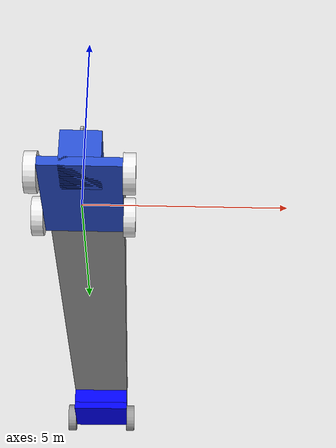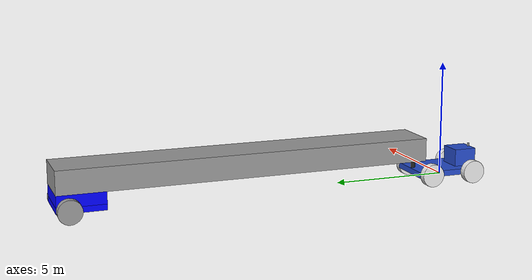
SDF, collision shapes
<?xml version='1.0'?>
<sdf version='1.7'>
  <model name='TractorTrailer_2'>
    <link name='link'>
      <inertial>
        <mass>6500</mass>
        <inertia>
          <ixx>4908.85</ixx>
          <ixy>0</ixy>
          <ixz>0</ixz>
          <iyy>2200.52</iyy>
          <iyz>0</iyz>
          <izz>7041.67</izz>
        </inertia>
        <pose>0 0 0 0 -0 0</pose>
      </inertial>
      <self_collide>0</self_collide>
      <enable_wind>0</enable_wind>
      <kinematic>0</kinematic>
      <pose>0 0 0.25 0 -0 0</pose>
      <gravity>1</gravity>
      <visual name='visual'>
        <geometry>
          <box>
            <size>2 3 0.25</size>
          </box>
        </geometry>
        <material>
          <script>
            <name>Gazebo/Blue</name>
            <uri>file://media/materials/scripts/gazebo.material</uri>
          </script>
          <shader type='pixel'>
            <normal_map>__default__</normal_map>
          </shader>
          <ambient>0 0 1 1</ambient>
          <diffuse>0 0 1 1</diffuse>
          <specular>0 0 1 1</specular>
          <emissive>0 0 0 1</emissive>
        </material>
        <pose>0 0 0 0 -0 0</pose>
        <transparency>0</transparency>
        <cast_shadows>1</cast_shadows>
      </visual>
      <collision name='collision'>
        <laser_retro>0</laser_retro>
        <max_contacts>10</max_contacts>
        <pose>0 0 0 0 -0 0</pose>
        <geometry>
          <box>
            <size>2 3 0.25</size>
          </box>
        </geometry>
        <surface>
          <friction>
            <ode>
              <mu>1</mu>
              <mu2>1</mu2>
              <fdir1>0 0 0</fdir1>
              <slip1>0</slip1>
              <slip2>0</slip2>
            </ode>
            <torsional>
              <coefficient>1</coefficient>
              <patch_radius>0</patch_radius>
              <surface_radius>0</surface_radius>
              <use_patch_radius>1</use_patch_radius>
              <ode>
                <slip>0</slip>
              </ode>
            </torsional>
          </friction>
          <bounce>
            <restitution_coefficient>0</restitution_coefficient>
            <threshold>1e+06</threshold>
          </bounce>
          <contact>
            <collide_without_contact>0</collide_without_contact>
            <collide_without_contact_bitmask>1</collide_without_contact_bitmask>
            <collide_bitmask>1</collide_bitmask>
            <ode>
              <soft_cfm>0</soft_cfm>
              <soft_erp>0.2</soft_erp>
              <kp>1e+13</kp>
              <kd>1</kd>
              <max_vel>0.01</max_vel>
              <min_depth>0</min_depth>
            </ode>
            <bullet>
              <split_impulse>1</split_impulse>
              <split_impulse_penetration_threshold>-0.01</split_impulse_penetration_threshold>
              <soft_cfm>0</soft_cfm>
              <soft_erp>0.2</soft_erp>
              <kp>1e+13</kp>
              <kd>1</kd>
            </bullet>
          </contact>
        </surface>
      </collision>
    </link>
    <link name='link_0'>
      <inertial>
        <mass>35</mass>
        <inertia>
          <ixx>2.45</ixx>
          <ixy>0</ixy>
          <ixz>0</ixz>
          <iyy>2.45</iyy>
          <iyz>0</iyz>
          <izz>4.375</izz>
        </inertia>
        <pose>0 0 0 0 -0 0</pose>
      </inertial>
      <pose>-1.15 -0.999952 0.2575 1.56905 1.5707 1.56905</pose>
      <gravity>1</gravity>
      <self_collide>0</self_collide>
      <kinematic>0</kinematic>
      <enable_wind>0</enable_wind>
      <visual name='visual'>
        <pose>0 0 0 0 -0 0</pose>
        <geometry>
          <cylinder>
            <radius>0.5</radius>
            <length>0.3</length>
          </cylinder>
        </geometry>
        <material>
          <lighting>1</lighting>
          <script>
            <uri>file://media/materials/scripts/gazebo.material</uri>
            <name>Gazebo/White</name>
          </script>
          <shader type='pixel'>
            <normal_map>__default__</normal_map>
          </shader>
          <ambient>1 1 1 1</ambient>
          <diffuse>0.7 0.7 0.7 1</diffuse>
          <specular>0.01 0.01 0.01 1</specular>
          <emissive>0 0 0 1</emissive>
        </material>
        <transparency>0</transparency>
        <cast_shadows>1</cast_shadows>
      </visual>
      <collision name='collision'>
        <laser_retro>0</laser_retro>
        <max_contacts>10</max_contacts>
        <pose>0 0 0 0 -0 0</pose>
        <geometry>
          <cylinder>
            <radius>0.5</radius>
            <length>0.3</length>
          </cylinder>
        </geometry>
        <surface>
          <friction>
            <ode>
              <mu>1</mu>
              <mu2>1</mu2>
              <fdir1>0 0 0</fdir1>
              <slip1>0</slip1>
              <slip2>0</slip2>
            </ode>
            <torsional>
              <coefficient>1</coefficient>
              <patch_radius>0</patch_radius>
              <surface_radius>0</surface_radius>
              <use_patch_radius>1</use_patch_radius>
              <ode>
                <slip>0</slip>
              </ode>
            </torsional>
          </friction>
          <bounce>
            <restitution_coefficient>0</restitution_coefficient>
            <threshold>1e+06</threshold>
          </bounce>
          <contact>
            <collide_without_contact>0</collide_without_contact>
            <collide_without_contact_bitmask>1</collide_without_contact_bitmask>
            <collide_bitmask>1</collide_bitmask>
            <ode>
              <soft_cfm>0</soft_cfm>
              <soft_erp>0.2</soft_erp>
              <kp>1e+13</kp>
              <kd>1</kd>
              <max_vel>0.01</max_vel>
              <min_depth>0</min_depth>
            </ode>
            <bullet>
              <split_impulse>1</split_impulse>
              <split_impulse_penetration_threshold>-0.01</split_impulse_penetration_threshold>
              <soft_cfm>0</soft_cfm>
              <soft_erp>0.2</soft_erp>
              <kp>1e+13</kp>
              <kd>1</kd>
            </bullet>
          </contact>
        </surface>
      </collision>
    </link>
    <link name='link_0_clone'>
      <inertial>
        <mass>35</mass>
        <inertia>
          <ixx>2.45</ixx>
          <ixy>0</ixy>
          <ixz>0</ixz>
          <iyy>2.45</iyy>
          <iyz>0</iyz>
          <izz>4.375</izz>
        </inertia>
        <pose>0 0 0 0 -0 0</pose>
      </inertial>
      <pose>1.15 -0.999952 0.2575 1.56905 1.5707 1.56905</pose>
      <gravity>1</gravity>
      <self_collide>0</self_collide>
      <kinematic>0</kinematic>
      <enable_wind>0</enable_wind>
      <visual name='visual'>
        <pose>0 0 0 0 -0 0</pose>
        <geometry>
          <cylinder>
            <radius>0.5</radius>
            <length>0.3</length>
          </cylinder>
        </geometry>
        <material>
          <lighting>1</lighting>
          <script>
            <uri>file://media/materials/scripts/gazebo.material</uri>
            <name>Gazebo/White</name>
          </script>
          <shader type='pixel'>
            <normal_map>__default__</normal_map>
          </shader>
          <ambient>1 1 1 1</ambient>
          <diffuse>0.7 0.7 0.7 1</diffuse>
          <specular>0.01 0.01 0.01 1</specular>
          <emissive>0 0 0 1</emissive>
        </material>
        <transparency>0</transparency>
        <cast_shadows>1</cast_shadows>
      </visual>
      <collision name='collision'>
        <laser_retro>0</laser_retro>
        <max_contacts>10</max_contacts>
        <pose>0 0 0 0 -0 0</pose>
        <geometry>
          <cylinder>
            <radius>0.5</radius>
            <length>0.3</length>
          </cylinder>
        </geometry>
        <surface>
          <friction>
            <ode>
              <mu>1</mu>
              <mu2>1</mu2>
              <fdir1>0 0 0</fdir1>
              <slip1>0</slip1>
              <slip2>0</slip2>
            </ode>
            <torsional>
              <coefficient>1</coefficient>
              <patch_radius>0</patch_radius>
              <surface_radius>0</surface_radius>
              <use_patch_radius>1</use_patch_radius>
              <ode>
                <slip>0</slip>
              </ode>
            </torsional>
          </friction>
          <bounce>
            <restitution_coefficient>0</restitution_coefficient>
            <threshold>1e+06</threshold>
          </bounce>
          <contact>
            <collide_without_contact>0</collide_without_contact>
            <collide_without_contact_bitmask>1</collide_without_contact_bitmask>
            <collide_bitmask>1</collide_bitmask>
            <ode>
              <soft_cfm>0</soft_cfm>
              <soft_erp>0.2</soft_erp>
              <kp>1e+13</kp>
              <kd>1</kd>
              <max_vel>0.01</max_vel>
              <min_depth>0</min_depth>
            </ode>
            <bullet>
              <split_impulse>1</split_impulse>
              <split_impulse_penetration_threshold>-0.01</split_impulse_penetration_threshold>
              <soft_cfm>0</soft_cfm>
              <soft_erp>0.2</soft_erp>
              <kp>1e+13</kp>
              <kd>1</kd>
            </bullet>
          </contact>
        </surface>
      </collision>
    </link>
    <link name='link_0_clone_0'>
      <inertial>
        <mass>35</mass>
        <inertia>
          <ixx>2.45</ixx>
          <ixy>0</ixy>
          <ixz>0</ixz>
          <iyy>2.45</iyy>
          <iyz>0</iyz>
          <izz>4.375</izz>
        </inertia>
        <pose>0 0 0 0 -0 0</pose>
      </inertial>
      <pose>1.15 0.999952 0.2575 1.56905 1.5707 1.56905</pose>
      <gravity>1</gravity>
      <self_collide>0</self_collide>
      <kinematic>0</kinematic>
      <enable_wind>0</enable_wind>
      <visual name='visual'>
        <pose>0 0 0 0 -0 0</pose>
        <geometry>
          <cylinder>
            <radius>0.5</radius>
            <length>0.3</length>
          </cylinder>
        </geometry>
        <material>
          <lighting>1</lighting>
          <script>
            <uri>file://media/materials/scripts/gazebo.material</uri>
            <name>Gazebo/White</name>
          </script>
          <shader type='pixel'>
            <normal_map>__default__</normal_map>
          </shader>
          <ambient>1 1 1 1</ambient>
          <diffuse>0.7 0.7 0.7 1</diffuse>
          <specular>0.01 0.01 0.01 1</specular>
          <emissive>0 0 0 1</emissive>
        </material>
        <transparency>0</transparency>
        <cast_shadows>1</cast_shadows>
      </visual>
      <collision name='collision'>
        <laser_retro>0</laser_retro>
        <max_contacts>10</max_contacts>
        <pose>0 0 0 0 -0 0</pose>
        <geometry>
          <cylinder>
            <radius>0.5</radius>
            <length>0.3</length>
          </cylinder>
        </geometry>
        <surface>
          <friction>
            <ode>
              <mu>1</mu>
              <mu2>1</mu2>
              <fdir1>0 0 0</fdir1>
              <slip1>0</slip1>
              <slip2>0</slip2>
            </ode>
            <torsional>
              <coefficient>1</coefficient>
              <patch_radius>0</patch_radius>
              <surface_radius>0</surface_radius>
              <use_patch_radius>1</use_patch_radius>
              <ode>
                <slip>0</slip>
              </ode>
            </torsional>
          </friction>
          <bounce>
            <restitution_coefficient>0</restitution_coefficient>
            <threshold>1e+06</threshold>
          </bounce>
          <contact>
            <collide_without_contact>0</collide_without_contact>
            <collide_without_contact_bitmask>1</collide_without_contact_bitmask>
            <collide_bitmask>1</collide_bitmask>
            <ode>
              <soft_cfm>0</soft_cfm>
              <soft_erp>0.2</soft_erp>
              <kp>1e+13</kp>
              <kd>1</kd>
              <max_vel>0.01</max_vel>
              <min_depth>0</min_depth>
            </ode>
            <bullet>
              <split_impulse>1</split_impulse>
              <split_impulse_penetration_threshold>-0.01</split_impulse_penetration_threshold>
              <soft_cfm>0</soft_cfm>
              <soft_erp>0.2</soft_erp>
              <kp>1e+13</kp>
              <kd>1</kd>
            </bullet>
          </contact>
        </surface>
      </collision>
    </link>
    <link name='link_0_clone_0_clone_0'>
      <inertial>
        <mass>35</mass>
        <inertia>
          <ixx>2.45</ixx>
          <ixy>0</ixy>
          <ixz>0</ixz>
          <iyy>2.45</iyy>
          <iyz>0</iyz>
          <izz>4.375</izz>
        </inertia>
        <pose>0 0 0 0 -0 0</pose>
      </inertial>
      <pose>1.15 16.76 0.265 1.56905 1.5707 1.56905</pose>
      <gravity>1</gravity>
      <self_collide>0</self_collide>
      <kinematic>0</kinematic>
      <enable_wind>0</enable_wind>
      <visual name='visual'>
        <pose>0 0 0 0 -0 0</pose>
        <geometry>
          <cylinder>
            <radius>0.5</radius>
            <length>0.3</length>
          </cylinder>
        </geometry>
        <material>
          <lighting>1</lighting>
          <script>
            <uri>file://media/materials/scripts/gazebo.material</uri>
            <name>Gazebo/Grey</name>
          </script>
          <shader type='pixel'>
            <normal_map>__default__</normal_map>
          </shader>
          <ambient>1 1 1 1</ambient>
          <diffuse>0.7 0.7 0.7 1</diffuse>
          <specular>0.01 0.01 0.01 1</specular>
          <emissive>0 0 0 1</emissive>
        </material>
        <transparency>0</transparency>
        <cast_shadows>1</cast_shadows>
      </visual>
      <collision name='collision'>
        <laser_retro>0</laser_retro>
        <max_contacts>10</max_contacts>
        <pose>0 0 0 0 -0 0</pose>
        <geometry>
          <cylinder>
            <radius>0.5</radius>
            <length>0.3</length>
          </cylinder>
        </geometry>
        <surface>
          <friction>
            <ode>
              <mu>1</mu>
              <mu2>1</mu2>
              <fdir1>0 0 0</fdir1>
              <slip1>0</slip1>
              <slip2>0</slip2>
            </ode>
            <torsional>
              <coefficient>1</coefficient>
              <patch_radius>0</patch_radius>
              <surface_radius>0</surface_radius>
              <use_patch_radius>1</use_patch_radius>
              <ode>
                <slip>0</slip>
              </ode>
            </torsional>
          </friction>
          <bounce>
            <restitution_coefficient>0</restitution_coefficient>
            <threshold>1e+06</threshold>
          </bounce>
          <contact>
            <collide_without_contact>0</collide_without_contact>
            <collide_without_contact_bitmask>1</collide_without_contact_bitmask>
            <collide_bitmask>1</collide_bitmask>
            <ode>
              <soft_cfm>0</soft_cfm>
              <soft_erp>0.2</soft_erp>
              <kp>1e+13</kp>
              <kd>1</kd>
              <max_vel>0.01</max_vel>
              <min_depth>0</min_depth>
            </ode>
            <bullet>
              <split_impulse>1</split_impulse>
              <split_impulse_penetration_threshold>-0.01</split_impulse_penetration_threshold>
              <soft_cfm>0</soft_cfm>
              <soft_erp>0.2</soft_erp>
              <kp>1e+13</kp>
              <kd>1</kd>
            </bullet>
          </contact>
        </surface>
      </collision>
    </link>
    <link name='link_0_clone_0_clone_1'>
      <inertial>
        <mass>35</mass>
        <inertia>
          <ixx>2.45</ixx>
          <ixy>0</ixy>
          <ixz>0</ixz>
          <iyy>2.45</iyy>
          <iyz>0</iyz>
          <izz>4.375</izz>
        </inertia>
        <pose>0 0 0 0 -0 0</pose>
      </inertial>
      <pose>-1.15 16.76 0.265 1.56905 1.5707 1.56905</pose>
      <gravity>1</gravity>
      <self_collide>0</self_collide>
      <kinematic>0</kinematic>
      <enable_wind>0</enable_wind>
      <visual name='visual'>
        <pose>0 0 0 0 -0 0</pose>
        <geometry>
          <cylinder>
            <radius>0.5</radius>
            <length>0.3</length>
          </cylinder>
        </geometry>
        <material>
          <lighting>1</lighting>
          <script>
            <uri>file://media/materials/scripts/gazebo.material</uri>
            <name>Gazebo/Grey</name>
          </script>
          <shader type='pixel'>
            <normal_map>__default__</normal_map>
          </shader>
          <ambient>1 1 1 1</ambient>
          <diffuse>0.7 0.7 0.7 1</diffuse>
          <specular>0.01 0.01 0.01 1</specular>
          <emissive>0 0 0 1</emissive>
        </material>
        <transparency>0</transparency>
        <cast_shadows>1</cast_shadows>
      </visual>
      <collision name='collision'>
        <laser_retro>0</laser_retro>
        <max_contacts>10</max_contacts>
        <pose>0 0 0 0 -0 0</pose>
        <geometry>
          <cylinder>
            <radius>0.5</radius>
            <length>0.3</length>
          </cylinder>
        </geometry>
        <surface>
          <friction>
            <ode>
              <mu>1</mu>
              <mu2>1</mu2>
              <fdir1>0 0 0</fdir1>
              <slip1>0</slip1>
              <slip2>0</slip2>
            </ode>
            <torsional>
              <coefficient>1</coefficient>
              <patch_radius>0</patch_radius>
              <surface_radius>0</surface_radius>
              <use_patch_radius>1</use_patch_radius>
              <ode>
                <slip>0</slip>
              </ode>
            </torsional>
          </friction>
          <bounce>
            <restitution_coefficient>0</restitution_coefficient>
            <threshold>1e+06</threshold>
          </bounce>
          <contact>
            <collide_without_contact>0</collide_without_contact>
            <collide_without_contact_bitmask>1</collide_without_contact_bitmask>
            <collide_bitmask>1</collide_bitmask>
            <ode>
              <soft_cfm>0</soft_cfm>
              <soft_erp>0.2</soft_erp>
              <kp>1e+13</kp>
              <kd>1</kd>
              <max_vel>0.01</max_vel>
              <min_depth>0</min_depth>
            </ode>
            <bullet>
              <split_impulse>1</split_impulse>
              <split_impulse_penetration_threshold>-0.01</split_impulse_penetration_threshold>
              <soft_cfm>0</soft_cfm>
              <soft_erp>0.2</soft_erp>
              <kp>1e+13</kp>
              <kd>1</kd>
            </bullet>
          </contact>
        </surface>
      </collision>
    </link>
    <link name='link_0_clone_1'>
      <inertial>
        <mass>35</mass>
        <inertia>
          <ixx>2.45</ixx>
          <ixy>0</ixy>
          <ixz>0</ixz>
          <iyy>2.45</iyy>
          <iyz>0</iyz>
          <izz>4.375</izz>
        </inertia>
        <pose>0 0 0 0 -0 0</pose>
      </inertial>
      <pose>-1.15 0.999952 0.2575 1.56905 1.5707 1.56905</pose>
      <gravity>1</gravity>
      <self_collide>0</self_collide>
      <kinematic>0</kinematic>
      <enable_wind>0</enable_wind>
      <visual name='visual'>
        <pose>0 0 0 0 -0 0</pose>
        <geometry>
          <cylinder>
            <radius>0.5</radius>
            <length>0.3</length>
          </cylinder>
        </geometry>
        <material>
          <lighting>1</lighting>
          <script>
            <uri>file://media/materials/scripts/gazebo.material</uri>
            <name>Gazebo/White</name>
          </script>
          <shader type='pixel'>
            <normal_map>__default__</normal_map>
          </shader>
          <ambient>1 1 1 1</ambient>
          <diffuse>0.7 0.7 0.7 1</diffuse>
          <specular>0.01 0.01 0.01 1</specular>
          <emissive>0 0 0 1</emissive>
        </material>
        <transparency>0</transparency>
        <cast_shadows>1</cast_shadows>
      </visual>
      <collision name='collision'>
        <laser_retro>0</laser_retro>
        <max_contacts>10</max_contacts>
        <pose>0 0 0 0 -0 0</pose>
        <geometry>
          <cylinder>
            <radius>0.5</radius>
            <length>0.3</length>
          </cylinder>
        </geometry>
        <surface>
          <friction>
            <ode>
              <mu>1</mu>
              <mu2>1</mu2>
              <fdir1>0 0 0</fdir1>
              <slip1>0</slip1>
              <slip2>0</slip2>
            </ode>
            <torsional>
              <coefficient>1</coefficient>
              <patch_radius>0</patch_radius>
              <surface_radius>0</surface_radius>
              <use_patch_radius>1</use_patch_radius>
              <ode>
                <slip>0</slip>
              </ode>
            </torsional>
          </friction>
          <bounce>
            <restitution_coefficient>0</restitution_coefficient>
            <threshold>1e+06</threshold>
          </bounce>
          <contact>
            <collide_without_contact>0</collide_without_contact>
            <collide_without_contact_bitmask>1</collide_without_contact_bitmask>
            <collide_bitmask>1</collide_bitmask>
            <ode>
              <soft_cfm>0</soft_cfm>
              <soft_erp>0.2</soft_erp>
              <kp>1e+13</kp>
              <kd>1</kd>
              <max_vel>0.01</max_vel>
              <min_depth>0</min_depth>
            </ode>
            <bullet>
              <split_impulse>1</split_impulse>
              <split_impulse_penetration_threshold>-0.01</split_impulse_penetration_threshold>
              <soft_cfm>0</soft_cfm>
              <soft_erp>0.2</soft_erp>
              <kp>1e+13</kp>
              <kd>1</kd>
            </bullet>
          </contact>
        </surface>
      </collision>
    </link>
    <link name='link_1'>
      <inertial>
        <mass>1</mass>
        <inertia>
          <ixx>0.166667</ixx>
          <ixy>0</ixy>
          <ixz>0</ixz>
          <iyy>0.166667</iyy>
          <iyz>0</iyz>
          <izz>0.166667</izz>
        </inertia>
        <pose>0 0 0 0 -0 0</pose>
      </inertial>
      <pose>0 -1 0.625 0 -0 0</pose>
      <self_collide>0</self_collide>
      <enable_wind>0</enable_wind>
      <kinematic>0</kinematic>
      <gravity>1</gravity>
      <visual name='visual'>
        <pose>0 0 0 0 -0 0</pose>
        <geometry>
          <box>
            <size>1 1 1</size>
          </box>
        </geometry>
        <material>
          <lighting>1</lighting>
          <script>
            <uri>file://media/materials/scripts/gazebo.material</uri>
            <name>Gazebo/Blue</name>
          </script>
          <shader type='pixel'>
            <normal_map>__default__</normal_map>
          </shader>
          <emissive>0 0 0 1</emissive>
          <ambient>0 0 1 1</ambient>
          <diffuse>0 0 1 1</diffuse>
          <specular>0.1 0.1 0.1 1</specular>
        </material>
        <transparency>0</transparency>
        <cast_shadows>1</cast_shadows>
      </visual>
      <collision name='collision'>
        <laser_retro>0</laser_retro>
        <max_contacts>10</max_contacts>
        <pose>0 0 0 0 -0 0</pose>
        <geometry>
          <box>
            <size>1 1 1</size>
          </box>
        </geometry>
        <surface>
          <friction>
            <ode>
              <mu>1</mu>
              <mu2>1</mu2>
              <fdir1>0 0 0</fdir1>
              <slip1>0</slip1>
              <slip2>0</slip2>
            </ode>
            <torsional>
              <coefficient>1</coefficient>
              <patch_radius>0</patch_radius>
              <surface_radius>0</surface_radius>
              <use_patch_radius>1</use_patch_radius>
              <ode>
                <slip>0</slip>
              </ode>
            </torsional>
          </friction>
          <bounce>
            <restitution_coefficient>0</restitution_coefficient>
            <threshold>1e+06</threshold>
          </bounce>
          <contact>
            <collide_without_contact>0</collide_without_contact>
            <collide_without_contact_bitmask>1</collide_without_contact_bitmask>
            <collide_bitmask>1</collide_bitmask>
            <ode>
              <soft_cfm>0</soft_cfm>
              <soft_erp>0.2</soft_erp>
              <kp>1e+13</kp>
              <kd>1</kd>
              <max_vel>0.01</max_vel>
              <min_depth>0</min_depth>
            </ode>
            <bullet>
              <split_impulse>1</split_impulse>
              <split_impulse_penetration_threshold>-0.01</split_impulse_penetration_threshold>
              <soft_cfm>0</soft_cfm>
              <soft_erp>0.2</soft_erp>
              <kp>1e+13</kp>
              <kd>1</kd>
            </bullet>
          </contact>
        </surface>
      </collision>
    </link>
    <link name='link_2'>
      <inertial>
        <mass>1</mass>
        <inertia>
          <ixx>0.145833</ixx>
          <ixy>0</ixy>
          <ixz>0</ixz>
          <iyy>0.145833</iyy>
          <iyz>0</iyz>
          <izz>0.125</izz>
        </inertia>
        <pose>0 0 0 0 -0 0</pose>
      </inertial>
      <pose>-0.02 1.36 0.64 0 -0 0</pose>
      <gravity>1</gravity>
      <self_collide>0</self_collide>
      <kinematic>0</kinematic>
      <enable_wind>0</enable_wind>
      <visual name='visual'>
        <pose>0 0 0 0 -0 0</pose>
        <geometry>
          <cylinder>
            <radius>0.1</radius>
            <length>0.5</length>
          </cylinder>
        </geometry>
        <material>
          <lighting>1</lighting>
          <script>
            <uri>file://media/materials/scripts/gazebo.material</uri>
            <name>Gazebo/Black</name>
          </script>
          <shader type='pixel'>
            <normal_map>__default__</normal_map>
          </shader>
          <ambient>0 0 0 1</ambient>
          <diffuse>0.7 0.7 0.7 1</diffuse>
          <specular>0.01 0.01 0.01 1</specular>
          <emissive>0 0 0 1</emissive>
        </material>
        <transparency>0</transparency>
        <cast_shadows>1</cast_shadows>
      </visual>
      <collision name='collision'>
        <laser_retro>0</laser_retro>
        <max_contacts>10</max_contacts>
        <pose>0 0 0 0 -0 0</pose>
        <geometry>
          <cylinder>
            <radius>0.1</radius>
            <length>0.5</length>
          </cylinder>
        </geometry>
        <surface>
          <friction>
            <ode>
              <mu>1</mu>
              <mu2>1</mu2>
              <fdir1>0 0 0</fdir1>
              <slip1>0</slip1>
              <slip2>0</slip2>
            </ode>
            <torsional>
              <coefficient>1</coefficient>
              <patch_radius>0</patch_radius>
              <surface_radius>0</surface_radius>
              <use_patch_radius>1</use_patch_radius>
              <ode>
                <slip>0</slip>
              </ode>
            </torsional>
          </friction>
          <bounce>
            <restitution_coefficient>0</restitution_coefficient>
            <threshold>1e+06</threshold>
          </bounce>
          <contact>
            <collide_without_contact>0</collide_without_contact>
            <collide_without_contact_bitmask>1</collide_without_contact_bitmask>
            <collide_bitmask>1</collide_bitmask>
            <ode>
              <soft_cfm>0</soft_cfm>
              <soft_erp>0.2</soft_erp>
              <kp>1e+13</kp>
              <kd>1</kd>
              <max_vel>0.01</max_vel>
              <min_depth>0</min_depth>
            </ode>
            <bullet>
              <split_impulse>1</split_impulse>
              <split_impulse_penetration_threshold>-0.01</split_impulse_penetration_threshold>
              <soft_cfm>0</soft_cfm>
              <soft_erp>0.2</soft_erp>
              <kp>1e+13</kp>
              <kd>1</kd>
            </bullet>
          </contact>
        </surface>
      </collision>
    </link>
    <link name='link_3'>
      <inertial>
        <mass>15000</mass>
        <inertia>
          <ixx>321250</ixx>
          <ixy>0</ixy>
          <ixz>0</ixz>
          <iyy>6250</iyy>
          <iyz>0</iyz>
          <izz>325000</izz>
        </inertia>
        <pose>0 0 0 0 -0 0</pose>
      </inertial>
      <pose>0 9.26 1.39 0 -0 0</pose>
      <gravity>1</gravity>
      <self_collide>0</self_collide>
      <kinematic>0</kinematic>
      <enable_wind>0</enable_wind>
      <visual name='visual'>
        <pose>0 0 0 0 -0 0</pose>
        <geometry>
          <box>
            <size>2 16 1</size>
          </box>
        </geometry>
        <material>
          <lighting>1</lighting>
          <script>
            <uri>file://media/materials/scripts/gazebo.material</uri>
            <name>Gazebo/Grey</name>
          </script>
          <shader type='pixel'>
            <normal_map>__default__</normal_map>
          </shader>
          <ambient>1 1 1 1</ambient>
          <diffuse>0.7 0.7 0.7 1</diffuse>
          <specular>0.01 0.01 0.01 1</specular>
          <emissive>0 0 0 1</emissive>
        </material>
        <transparency>0</transparency>
        <cast_shadows>1</cast_shadows>
      </visual>
      <collision name='collision'>
        <laser_retro>0</laser_retro>
        <max_contacts>10</max_contacts>
        <pose>0 0 0 0 -0 0</pose>
        <geometry>
          <box>
            <size>2 16 1</size>
          </box>
        </geometry>
        <surface>
          <friction>
            <ode>
              <mu>1</mu>
              <mu2>1</mu2>
              <fdir1>0 0 0</fdir1>
              <slip1>0</slip1>
              <slip2>0</slip2>
            </ode>
            <torsional>
              <coefficient>1</coefficient>
              <patch_radius>0</patch_radius>
              <surface_radius>0</surface_radius>
              <use_patch_radius>1</use_patch_radius>
              <ode>
                <slip>0</slip>
              </ode>
            </torsional>
          </friction>
          <bounce>
            <restitution_coefficient>0</restitution_coefficient>
            <threshold>1e+06</threshold>
          </bounce>
          <contact>
            <collide_without_contact>0</collide_without_contact>
            <collide_without_contact_bitmask>1</collide_without_contact_bitmask>
            <collide_bitmask>1</collide_bitmask>
            <ode>
              <soft_cfm>0</soft_cfm>
              <soft_erp>0.2</soft_erp>
              <kp>1e+13</kp>
              <kd>1</kd>
              <max_vel>0.01</max_vel>
              <min_depth>0</min_depth>
            </ode>
            <bullet>
              <split_impulse>1</split_impulse>
              <split_impulse_penetration_threshold>-0.01</split_impulse_penetration_threshold>
              <soft_cfm>0</soft_cfm>
              <soft_erp>0.2</soft_erp>
              <kp>1e+13</kp>
              <kd>1</kd>
            </bullet>
          </contact>
        </surface>
      </collision>
    </link>
    <link name='link_4'>
      <inertial>
        <mass>1</mass>
        <inertia>
          <ixx>0.166667</ixx>
          <ixy>0</ixy>
          <ixz>0</ixz>
          <iyy>0.166667</iyy>
          <iyz>0</iyz>
          <izz>0.166667</izz>
        </inertia>
        <pose>0 0 0 0 -0 0</pose>
      </inertial>
      <pose>0 16.26 0.64 0 -0 0</pose>
      <gravity>1</gravity>
      <self_collide>0</self_collide>
      <kinematic>0</kinematic>
      <enable_wind>0</enable_wind>
      <visual name='visual'>
        <pose>0 0 0 0 -0 0</pose>
        <geometry>
          <box>
            <size>2 2 0.5</size>
          </box>
        </geometry>
        <material>
          <lighting>1</lighting>
          <script>
            <uri>file://media/materials/scripts/gazebo.material</uri>
            <name>Gazebo/Grey</name>
          </script>
          <shader type='pixel'>
            <normal_map>__default__</normal_map>
          </shader>
          <ambient>0 0 1 1</ambient>
          <diffuse>0.7 0.7 0.7 1</diffuse>
          <specular>0.01 0.01 0.01 1</specular>
          <emissive>0 0 0 1</emissive>
        </material>
        <transparency>0</transparency>
        <cast_shadows>1</cast_shadows>
      </visual>
      <collision name='collision'>
        <laser_retro>0</laser_retro>
        <max_contacts>10</max_contacts>
        <pose>0 0 0 0 -0 0</pose>
        <geometry>
          <box>
            <size>2 2 0.5</size>
          </box>
        </geometry>
        <surface>
          <friction>
            <ode>
              <mu>1</mu>
              <mu2>1</mu2>
              <fdir1>0 0 0</fdir1>
              <slip1>0</slip1>
              <slip2>0</slip2>
            </ode>
            <torsional>
              <coefficient>1</coefficient>
              <patch_radius>0</patch_radius>
              <surface_radius>0</surface_radius>
              <use_patch_radius>1</use_patch_radius>
              <ode>
                <slip>0</slip>
              </ode>
            </torsional>
          </friction>
          <bounce>
            <restitution_coefficient>0</restitution_coefficient>
            <threshold>1e+06</threshold>
          </bounce>
          <contact>
            <collide_without_contact>0</collide_without_contact>
            <collide_without_contact_bitmask>1</collide_without_contact_bitmask>
            <collide_bitmask>1</collide_bitmask>
            <ode>
              <soft_cfm>0</soft_cfm>
              <soft_erp>0.2</soft_erp>
              <kp>1e+13</kp>
              <kd>1</kd>
              <max_vel>0.01</max_vel>
              <min_depth>0</min_depth>
            </ode>
            <bullet>
              <split_impulse>1</split_impulse>
              <split_impulse_penetration_threshold>-0.01</split_impulse_penetration_threshold>
              <soft_cfm>0</soft_cfm>
              <soft_erp>0.2</soft_erp>
              <kp>1e+13</kp>
              <kd>1</kd>
            </bullet>
          </contact>
        </surface>
      </collision>
    </link>
    <link name='link_4_clone'>
      <inertial>
        <mass>1</mass>
        <inertia>
          <ixx>0.166667</ixx>
          <ixy>0</ixy>
          <ixz>0</ixz>
          <iyy>0.166667</iyy>
          <iyz>0</iyz>
          <izz>0.166667</izz>
        </inertia>
        <pose>0 0 0 0 -0 0</pose>
      </inertial>
      <pose>1e-06 16.26 0.265 0 -0 0</pose>
      <gravity>1</gravity>
      <self_collide>0</self_collide>
      <kinematic>0</kinematic>
      <enable_wind>0</enable_wind>
      <visual name='visual'>
        <pose>0 0 0 0 -0 0</pose>
        <geometry>
          <box>
            <size>2 2 0.25</size>
          </box>
        </geometry>
        <material>
          <lighting>1</lighting>
          <script>
            <uri>file://media/materials/scripts/gazebo.material</uri>
            <name>Gazebo/Grey</name>
          </script>
          <shader type='pixel'>
            <normal_map>__default__</normal_map>
          </shader>
          <ambient>0 0 1 1</ambient>
          <diffuse>0.7 0.7 0.7 1</diffuse>
          <specular>0.01 0.01 0.01 1</specular>
          <emissive>0 0 0 1</emissive>
        </material>
        <transparency>0</transparency>
        <cast_shadows>1</cast_shadows>
      </visual>
      <collision name='collision'>
        <laser_retro>0</laser_retro>
        <max_contacts>10</max_contacts>
        <pose>0 0 0 0 -0 0</pose>
        <geometry>
          <box>
            <size>2 2 0.25</size>
          </box>
        </geometry>
        <surface>
          <friction>
            <ode>
              <mu>1</mu>
              <mu2>1</mu2>
              <fdir1>0 0 0</fdir1>
              <slip1>0</slip1>
              <slip2>0</slip2>
            </ode>
            <torsional>
              <coefficient>1</coefficient>
              <patch_radius>0</patch_radius>
              <surface_radius>0</surface_radius>
              <use_patch_radius>1</use_patch_radius>
              <ode>
                <slip>0</slip>
              </ode>
            </torsional>
          </friction>
          <bounce>
            <restitution_coefficient>0</restitution_coefficient>
            <threshold>1e+06</threshold>
          </bounce>
          <contact>
            <collide_without_contact>0</collide_without_contact>
            <collide_without_contact_bitmask>1</collide_without_contact_bitmask>
            <collide_bitmask>1</collide_bitmask>
            <ode>
              <soft_cfm>0</soft_cfm>
              <soft_erp>0.2</soft_erp>
              <kp>1e+13</kp>
              <kd>1</kd>
              <max_vel>0.01</max_vel>
              <min_depth>0</min_depth>
            </ode>
            <bullet>
              <split_impulse>1</split_impulse>
              <split_impulse_penetration_threshold>-0.01</split_impulse_penetration_threshold>
              <soft_cfm>0</soft_cfm>
              <soft_erp>0.2</soft_erp>
              <kp>1e+13</kp>
              <kd>1</kd>
            </bullet>
          </contact>
        </surface>
      </collision>
    </link>
    <model name='velodyne'>
      <link name='base'>
        <pose>0 0 0.029335 0 -0 0</pose>
        <inertial>
          <mass>1.2</mass>
          <inertia>
            <ixx>0.00108747</ixx>
            <iyy>0.00108747</iyy>
            <izz>0.00109244</izz>
            <ixy>0</ixy>
            <ixz>0</ixz>
            <iyz>0</iyz>
          </inertia>
          <pose>0 0 0 0 -0 0</pose>
        </inertial>
        <collision name='base_collision'>
          <geometry>
            <cylinder>
              <radius>0.04267</radius>
              <length>0.05867</length>
            </cylinder>
          </geometry>
          <max_contacts>10</max_contacts>
          <surface>
            <contact>
              <ode/>
            </contact>
            <bounce/>
            <friction>
              <torsional>
                <ode/>
              </torsional>
              <ode/>
            </friction>
          </surface>
        </collision>
        <visual name='base_visual'>
          <pose>0 0 -0.029335 0 -0 0</pose>
          <geometry>
            <mesh>
              <uri>model://velodyne_hdl32/meshes/velodyne_base.dae</uri>
            </mesh>
          </geometry>
        </visual>
        <self_collide>0</self_collide>
        <enable_wind>0</enable_wind>
        <kinematic>0</kinematic>
      </link>
      <link name='top'>
        <pose>0 0 0.095455 0 -0 0</pose>
        <inertial>
          <mass>0.1</mass>
          <inertia>
            <ixx>9.0623e-05</ixx>
            <iyy>9.0623e-05</iyy>
            <izz>9.1036e-05</izz>
            <ixy>0</ixy>
            <ixz>0</ixz>
            <iyz>0</iyz>
          </inertia>
          <pose>0 0 0 0 -0 0</pose>
        </inertial>
        <collision name='top_collision'>
          <geometry>
            <cylinder>
              <radius>0.04267</radius>
              <length>0.07357</length>
            </cylinder>
          </geometry>
          <max_contacts>10</max_contacts>
          <surface>
            <contact>
              <ode/>
            </contact>
            <bounce/>
            <friction>
              <torsional>
                <ode/>
              </torsional>
              <ode/>
            </friction>
          </surface>
        </collision>
        <visual name='top_visual'>
          <pose>0 0 -0.037679 0 -0 1.5707</pose>
          <geometry>
            <mesh>
              <uri>model://velodyne_hdl32/meshes/velodyne_top.dae</uri>
            </mesh>
          </geometry>
        </visual>
        <sensor name='sensor' type='ray'>
          <pose>0 0 -0.004645 1.5707 -0 0</pose>
          <visualize>1</visualize>
          <update_rate>30</update_rate>
          <ray>
            <noise>
              <type>gaussian</type>
              <mean>0</mean>
              <stddev>0.1</stddev>
            </noise>
            <scan>
              <horizontal>
                <samples>32</samples>
                <resolution>1</resolution>
                <min_angle>-0.535292</min_angle>
                <max_angle>0.186227</max_angle>
              </horizontal>
              <vertical>
                <samples>1</samples>
                <min_angle>0</min_angle>
                <max_angle>0</max_angle>
              </vertical>
            </scan>
            <range>
              <min>0.1</min>
              <max>70</max>
              <resolution>0.02</resolution>
            </range>
          </ray>
        </sensor>
        <self_collide>0</self_collide>
        <enable_wind>0</enable_wind>
        <kinematic>0</kinematic>
      </link>
      <joint name='joint' type='revolute'>
        <pose>0 0 -0.036785 0 -0 0</pose>
        <parent>base</parent>
        <child>top</child>
        <axis>
          <xyz>0 0 1</xyz>
          <limit>
            <lower>-1e+16</lower>
            <upper>1e+16</upper>
          </limit>
          <dynamics>
            <spring_reference>0</spring_reference>
            <spring_stiffness>0</spring_stiffness>
          </dynamics>
        </axis>
      </joint>
      <pose>0.02116 -1.43891 1.12503 0 -0 0</pose>
    </model>
    <joint name='Cab' type='fixed'>
      <parent>link</parent>
      <child>link_1</child>
      <pose>0 0 0 0 -0 0</pose>
      <physics>
        <ode>
          <limit>
            <cfm>0</cfm>
            <erp>0.2</erp>
          </limit>
          <suspension>
            <cfm>0</cfm>
            <erp>0.2</erp>
          </suspension>
        </ode>
      </physics>
    </joint>
    <joint name='Fifth_wheel' type='revolute'>
      <parent>link</parent>
      <child>link_2</child>
      <pose>0 0 0 0 -0 0</pose>
      <axis>
        <xyz>0 0 1</xyz>
        <limit>
          <lower>-1.79769e+308</lower>
          <upper>1.79769e+308</upper>
          <effort>-1</effort>
          <velocity>-1</velocity>
        </limit>
        <dynamics>
          <spring_reference>0</spring_reference>
          <spring_stiffness>0</spring_stiffness>
          <damping>0</damping>
          <friction>0</friction>
        </dynamics>
      </axis>
      <physics>
        <ode>
          <limit>
            <cfm>0</cfm>
            <erp>0.2</erp>
          </limit>
          <suspension>
            <cfm>0</cfm>
            <erp>0.2</erp>
          </suspension>
        </ode>
      </physics>
    </joint>
    <joint name='Main_Trailer' type='fixed'>
      <parent>link_2</parent>
      <child>link_3</child>
      <pose>0 0 0 0 -0 0</pose>
      <physics>
        <ode>
          <limit>
            <cfm>0</cfm>
            <erp>0.2</erp>
          </limit>
          <suspension>
            <cfm>0</cfm>
            <erp>0.2</erp>
          </suspension>
        </ode>
      </physics>
    </joint>
    <joint name='Tractor_front_driv_wheel' type='revolute2'>
      <parent>link</parent>
      <child>link_0_clone</child>
      <pose>0 0 0 0 -0 0</pose>
      <axis>
        <xyz>1 0 0</xyz>
        <limit>
          <lower>-1.79769e+308</lower>
          <upper>1.79769e+308</upper>
          <effort>-1</effort>
          <velocity>-1</velocity>
        </limit>
        <dynamics>
          <spring_reference>0</spring_reference>
          <spring_stiffness>0</spring_stiffness>
          <damping>0</damping>
          <friction>0</friction>
        </dynamics>
      </axis>
      <axis2>
        <xyz>0 0 1</xyz>
        <limit>
          <lower>-1.79769e+308</lower>
          <upper>1.79769e+308</upper>
          <effort>-1</effort>
          <velocity>-1</velocity>
        </limit>
        <dynamics>
          <spring_reference>0</spring_reference>
          <spring_stiffness>0</spring_stiffness>
          <damping>0</damping>
          <friction>0</friction>
        </dynamics>
      </axis2>
      <physics>
        <ode>
          <limit>
            <cfm>0</cfm>
            <erp>0.2</erp>
          </limit>
          <suspension>
            <cfm>0</cfm>
            <erp>0.2</erp>
          </suspension>
        </ode>
      </physics>
    </joint>
    <joint name='Tractor_front_pass_wheel' type='revolute2'>
      <parent>link</parent>
      <child>link_0</child>
      <pose>0 0 0 0 -0 0</pose>
      <axis>
        <xyz>0 0 1</xyz>
        <limit>
          <lower>-1.79769e+308</lower>
          <upper>1.79769e+308</upper>
          <effort>-1</effort>
          <velocity>-1</velocity>
        </limit>
        <dynamics>
          <spring_reference>0</spring_reference>
          <spring_stiffness>0</spring_stiffness>
          <damping>0</damping>
          <friction>0</friction>
        </dynamics>
      </axis>
      <axis2>
        <xyz>1 0 0</xyz>
        <limit>
          <lower>-1.79769e+308</lower>
          <upper>1.79769e+308</upper>
          <effort>-1</effort>
          <velocity>-1</velocity>
        </limit>
        <dynamics>
          <spring_reference>0</spring_reference>
          <spring_stiffness>0</spring_stiffness>
          <damping>0</damping>
          <friction>0</friction>
        </dynamics>
      </axis2>
      <physics>
        <ode>
          <limit>
            <cfm>0</cfm>
            <erp>0.2</erp>
          </limit>
          <suspension>
            <cfm>0</cfm>
            <erp>0.2</erp>
          </suspension>
        </ode>
      </physics>
    </joint>
    <joint name='Tractor_rear_driv_wheel' type='revolute'>
      <parent>link</parent>
      <child>link_0_clone_0</child>
      <pose>0 0 0 0 -0 0</pose>
      <axis>
        <xyz>0 0 1</xyz>
        <limit>
          <lower>-1.79769e+308</lower>
          <upper>1.79769e+308</upper>
          <effort>-1</effort>
          <velocity>-1</velocity>
        </limit>
        <dynamics>
          <spring_reference>0</spring_reference>
          <spring_stiffness>0</spring_stiffness>
          <damping>0</damping>
          <friction>0</friction>
        </dynamics>
      </axis>
      <physics>
        <ode>
          <limit>
            <cfm>0</cfm>
            <erp>0.2</erp>
          </limit>
          <suspension>
            <cfm>0</cfm>
            <erp>0.2</erp>
          </suspension>
        </ode>
      </physics>
    </joint>
    <joint name='Tractor_rear_pass_wheel' type='revolute'>
      <parent>link</parent>
      <child>link_0_clone_1</child>
      <pose>0 0 0 0 -0 0</pose>
      <axis>
        <xyz>0 0 1</xyz>
        <limit>
          <lower>-1.79769e+308</lower>
          <upper>1.79769e+308</upper>
          <effort>-1</effort>
          <velocity>-1</velocity>
        </limit>
        <dynamics>
          <spring_reference>0</spring_reference>
          <spring_stiffness>0</spring_stiffness>
          <damping>0</damping>
          <friction>0</friction>
        </dynamics>
      </axis>
      <physics>
        <ode>
          <limit>
            <cfm>0</cfm>
            <erp>0.2</erp>
          </limit>
          <suspension>
            <cfm>0</cfm>
            <erp>0.2</erp>
          </suspension>
        </ode>
      </physics>
    </joint>
    <joint name='Trailer_bot' type='fixed'>
      <parent>link_4_clone</parent>
      <child>link_3</child>
      <pose>0 0 0 0 -0 0</pose>
      <physics>
        <ode>
          <limit>
            <cfm>0</cfm>
            <erp>0.2</erp>
          </limit>
          <suspension>
            <cfm>0</cfm>
            <erp>0.2</erp>
          </suspension>
        </ode>
      </physics>
    </joint>
    <joint name='Trailer_driv_wheel' type='revolute'>
      <parent>link_4_clone</parent>
      <child>link_0_clone_0_clone_0</child>
      <pose>0 0 0 0 -0 0</pose>
      <axis>
        <xyz>0 0 1</xyz>
        <limit>
          <lower>-1.79769e+308</lower>
          <upper>1.79769e+308</upper>
          <effort>-1</effort>
          <velocity>-1</velocity>
        </limit>
        <dynamics>
          <spring_reference>0</spring_reference>
          <spring_stiffness>0</spring_stiffness>
          <damping>0</damping>
          <friction>0</friction>
        </dynamics>
      </axis>
      <physics>
        <ode>
          <limit>
            <cfm>0</cfm>
            <erp>0.2</erp>
          </limit>
          <suspension>
            <cfm>0</cfm>
            <erp>0.2</erp>
          </suspension>
        </ode>
      </physics>
    </joint>
    <joint name='Trailer_mid2' type='fixed'>
      <parent>link_4</parent>
      <child>link_3</child>
      <pose>0 0 0 0 -0 0</pose>
      <physics>
        <ode>
          <limit>
            <cfm>0</cfm>
            <erp>0.2</erp>
          </limit>
          <suspension>
            <cfm>0</cfm>
            <erp>0.2</erp>
          </suspension>
        </ode>
      </physics>
    </joint>
    <joint name='Trailer_mid' type='fixed'>
      <parent>link_3</parent>
      <child>link_4</child>
      <pose>0 0 0 0 -0 0</pose>
      <physics>
        <ode>
          <limit>
            <cfm>0</cfm>
            <erp>0.2</erp>
          </limit>
          <suspension>
            <cfm>0</cfm>
            <erp>0.2</erp>
          </suspension>
        </ode>
      </physics>
    </joint>
    <joint name='Trailer_mid_bot' type='fixed'>
      <parent>link_4</parent>
      <child>link_4_clone</child>
      <pose>0 0 0 0 -0 0</pose>
      <physics>
        <ode>
          <limit>
            <cfm>0</cfm>
            <erp>0.2</erp>
          </limit>
          <suspension>
            <cfm>0</cfm>
            <erp>0.2</erp>
          </suspension>
        </ode>
      </physics>
    </joint>
    <joint name='Trailer_pass_wheel' type='revolute'>
      <parent>link_4_clone</parent>
      <child>link_0_clone_0_clone_1</child>
      <pose>0 0 0 0 -0 0</pose>
      <axis>
        <xyz>0 0 1</xyz>
        <limit>
          <lower>-1.79769e+308</lower>
          <upper>1.79769e+308</upper>
          <effort>-1</effort>
          <velocity>-1</velocity>
        </limit>
        <dynamics>
          <spring_reference>0</spring_reference>
          <spring_stiffness>0</spring_stiffness>
          <damping>0</damping>
          <friction>0</friction>
        </dynamics>
      </axis>
      <physics>
        <ode>
          <limit>
            <cfm>0</cfm>
            <erp>0.2</erp>
          </limit>
          <suspension>
            <cfm>0</cfm>
            <erp>0.2</erp>
          </suspension>
        </ode>
      </physics>
    </joint>
    <joint name='Tractor_Cab_LiDAR_Fixed' type='fixed'>
      <parent>link_1</parent>
      <child>velodyne::base</child>
      <pose>0 0 0 0 -0 0</pose>
      <physics>
        <ode>
          <limit>
            <cfm>0</cfm>
            <erp>0.2</erp>
          </limit>
          <suspension>
            <cfm>0</cfm>
            <erp>0.2</erp>
          </suspension>
        </ode>
      </physics>
    </joint>
    <static>0</static>
    <allow_auto_disable>1</allow_auto_disable>
  </model>

  <gazebo>
    <plugin name="gazebo_ros_control" filename="libgazebo_ros_control.so">
      <robotNamespace>/TractorTrailer_2</robotNamespace>
    </plugin>
  </gazebo>

  <transmission name="Driv_Wheel">
    <type>transmission_interface/SimpleTransmission</type>
    <joint name="Tractor_front_driv_wheel">
      <hardwareInterface>EffortJointInterface</hardwareInterface>
    </joint>
    <actuator name="Driv_Steer">
      <hardwareInterface>EffortJointInterface</hardwareInterface>
      <mechanicalReduction>1</mechanicalReduction>
    </actuator>
  </transmission>

  <transmission name="Pass_Wheel">
    <type>transmission_interface/SimpleTransmission</type>
    <joint name="Tractor_front_pass_wheel">
      <hardwareInterface>EffortJointInterface</hardwareInterface>
    </joint>
    <actuator name="Pass_Steer">
      <hardwareInterface>EffortJointInterface</hardwareInterface>
      <mechanicalReduction>1</mechanicalReduction>
    </actuator>
  </transmission>
</sdf>
